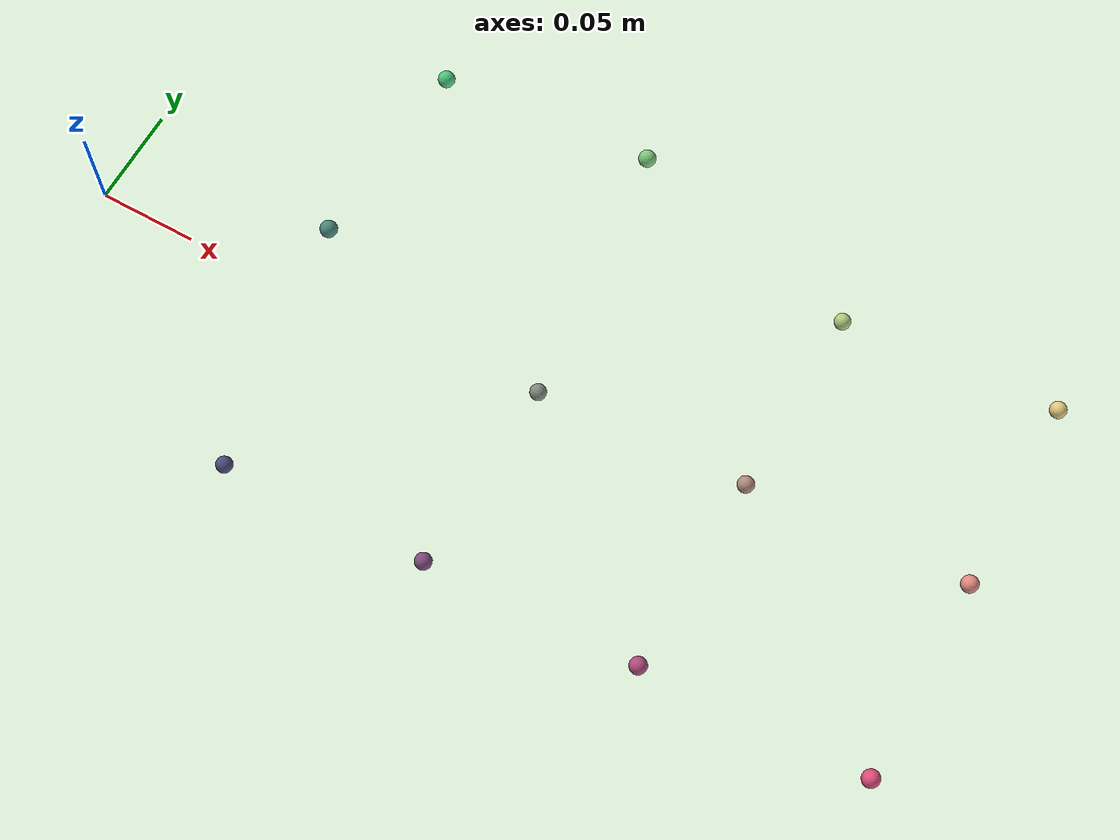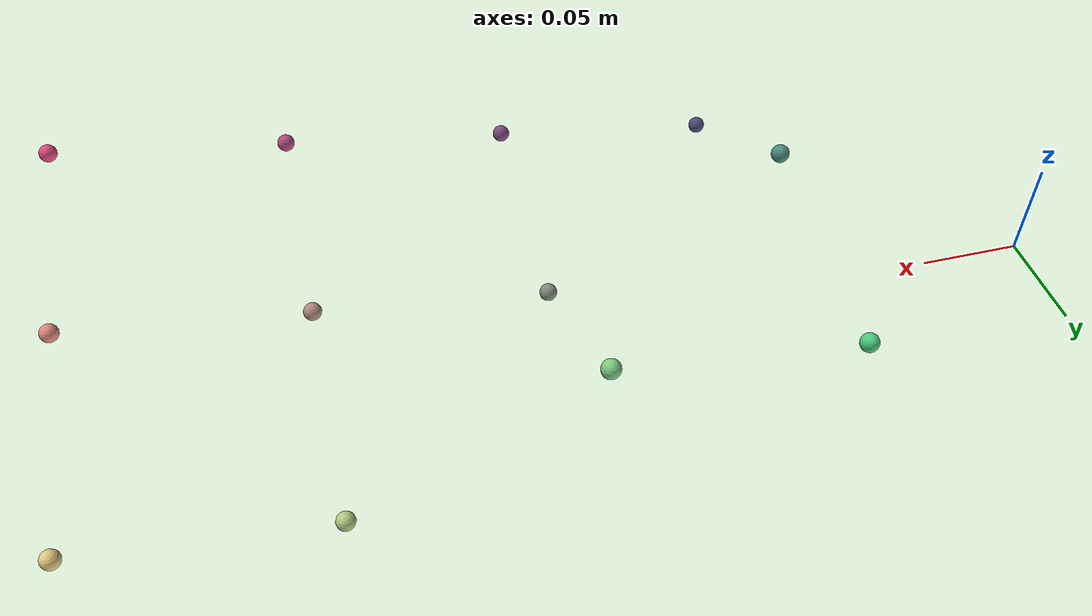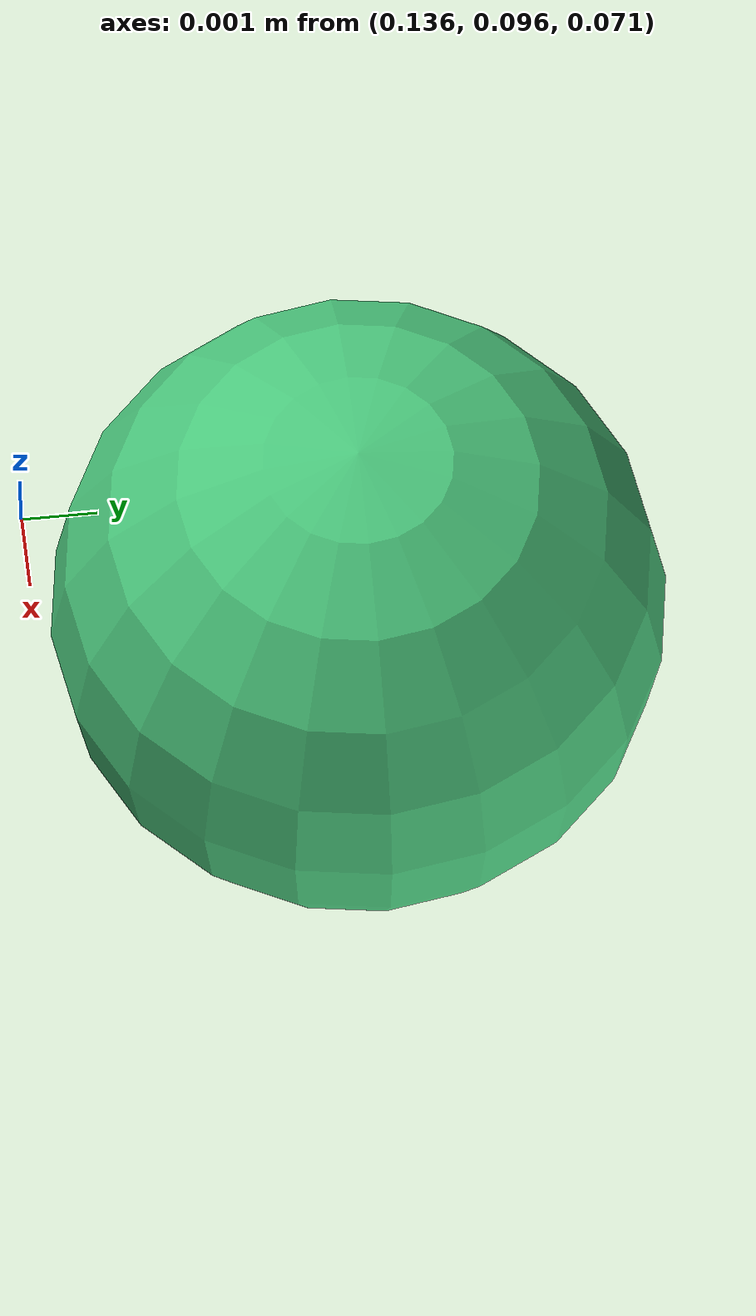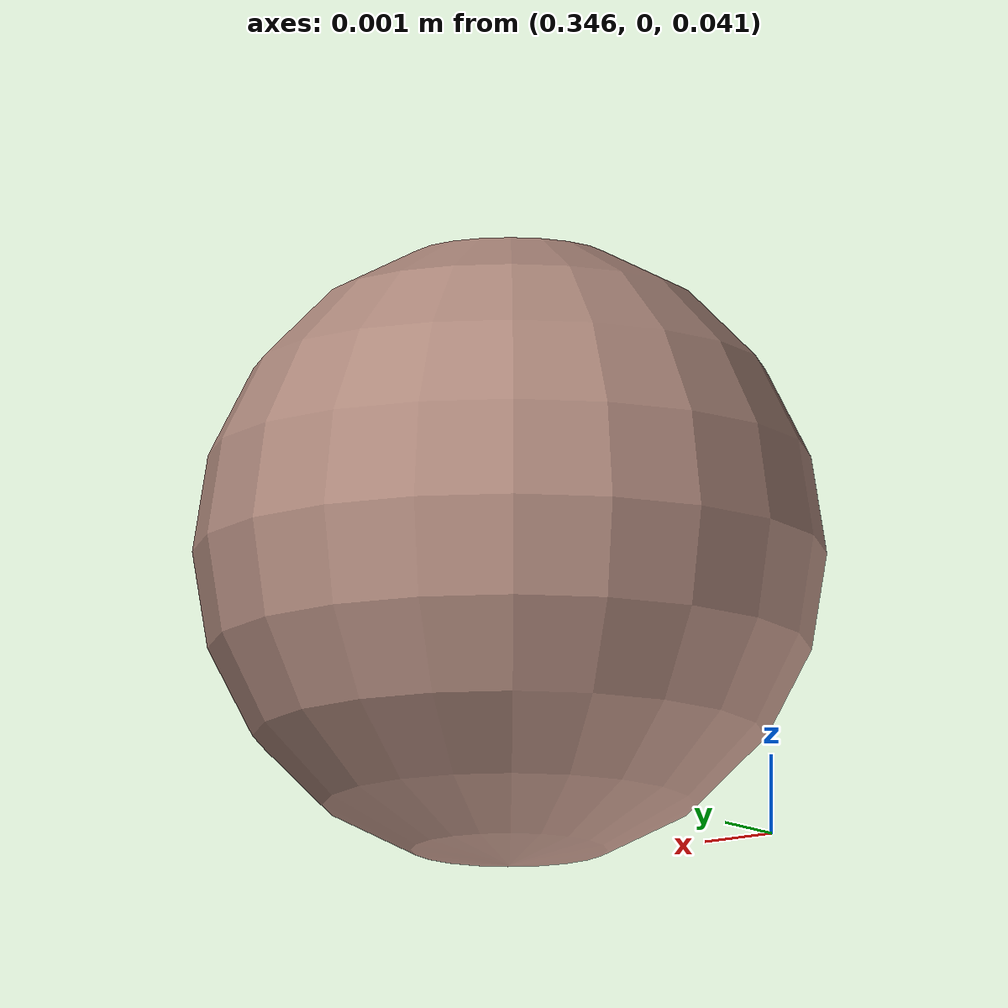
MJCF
<mujoco><visual><global offwidth="640" offheight="480" /></visual><worldbody><camera name="calibration" pos="0.3 -0.5 0.4" xyaxes="1 0 0 0 0.624695 0.780869" fovy="55.0" /><light pos="0.3 -0.4 0.8" dir="0 0 -1" /><geom name="landmark_0" type="sphere" size="0.004" pos="0.14 -0.1 0.03" rgba="0.3 0.3 0.5 1.0" /><geom name="landmark_1" type="sphere" size="0.004" pos="0.245 -0.1 0.045" rgba="0.5 0.3 0.5 1.0" /><geom name="landmark_2" type="sphere" size="0.004" pos="0.35 -0.1 0.06" rgba="0.7 0.3 0.5 1.0" /><geom name="landmark_3" type="sphere" size="0.004" pos="0.455 -0.1 0.075" rgba="0.9000000000000001 0.3 0.5 1.0" /><geom name="landmark_4" type="sphere" size="0.004" pos="0.14 0.0 0.09" rgba="0.3 0.55 0.5 1.0" /><geom name="landmark_5" type="sphere" size="0.004" pos="0.245 0.0 0.03" rgba="0.5 0.55 0.5 1.0" /><geom name="landmark_6" type="sphere" size="0.004" pos="0.35 0.0 0.045" rgba="0.7 0.55 0.5 1.0" /><geom name="landmark_7" type="sphere" size="0.004" pos="0.455 0.0 0.06" rgba="0.9000000000000001 0.55 0.5 1.0" /><geom name="landmark_8" type="sphere" size="0.004" pos="0.14 0.1 0.075" rgba="0.3 0.8 0.5 1.0" /><geom name="landmark_9" type="sphere" size="0.004" pos="0.245 0.1 0.09" rgba="0.5 0.8 0.5 1.0" /><geom name="landmark_10" type="sphere" size="0.004" pos="0.35 0.1 0.03" rgba="0.7 0.8 0.5 1.0" /><geom name="landmark_11" type="sphere" size="0.004" pos="0.455 0.1 0.045" rgba="0.9000000000000001 0.8 0.5 1.0" /></worldbody></mujoco>
